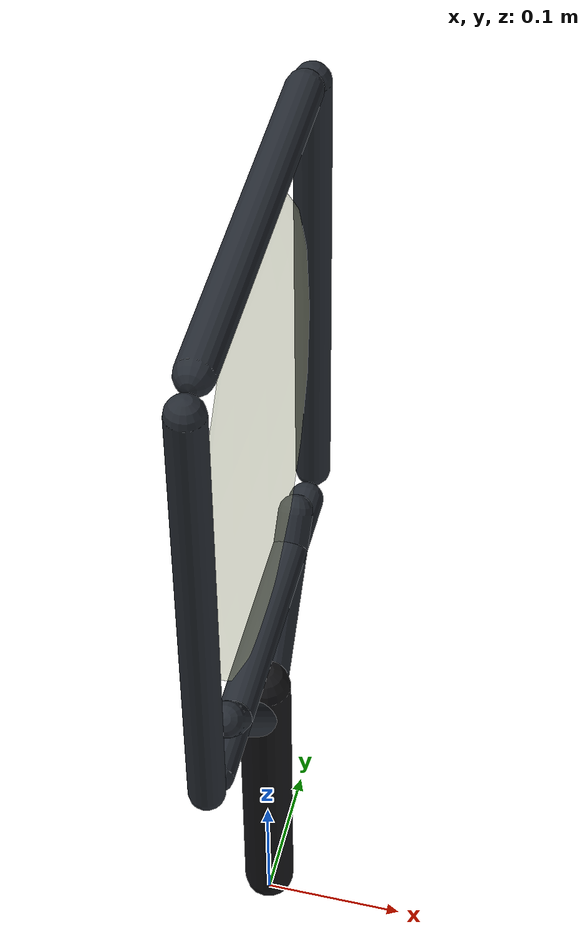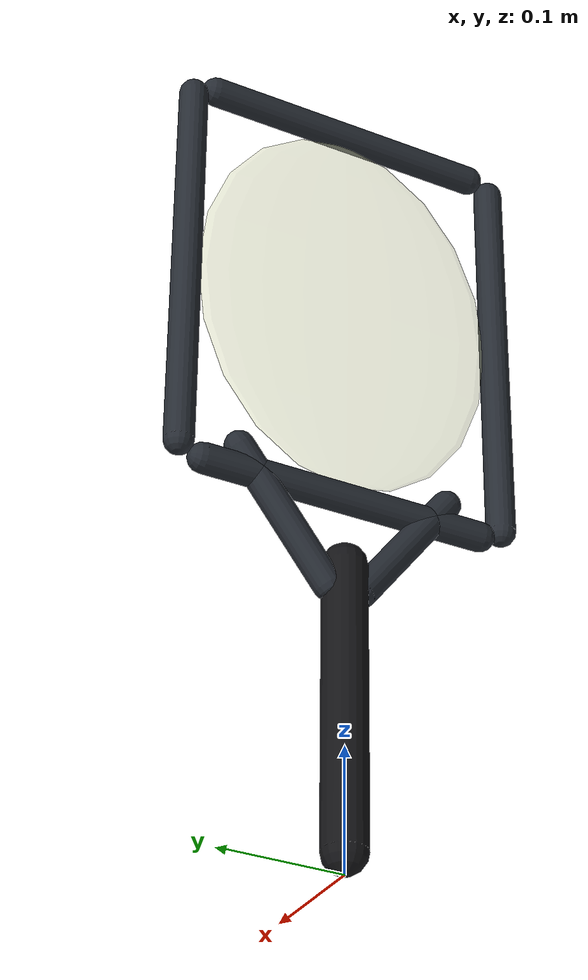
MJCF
<mujoco model="tennis_racket">
    <compiler angle="degree" coordinate="local" inertiafromgeom="false" />

    <default>
        <geom contype="8" conaffinity="7" condim="3" density="0" friction="0.45 0.01 0.001" margin="0.001" />
        <default class="racket_frame">
            <geom type="capsule" size="0.012" rgba="0.15 0.17 0.2 1" />
        </default>
    </default>

    <worldbody>
        <body name="tennis_racket">
            <inertial pos="0 0 0.36" mass="0.30" diaginertia="0.0105 0.012 0.0018" />

            <geom name="racket_grip" class="racket_frame" fromto="0 0 0.018 0 0 0.25" size="0.018" rgba="0.08 0.08 0.09 1" />
            <geom name="racket_throat_negative" class="racket_frame" fromto="0 -0.014 0.23 0 -0.09 0.33" />
            <geom name="racket_throat_positive" class="racket_frame" fromto="0 0.014 0.23 0 0.09 0.33" />
            <geom name="racket_frame_negative" class="racket_frame" fromto="0 -0.14 0.32 0 -0.14 0.66" />
            <geom name="racket_frame_positive" class="racket_frame" fromto="0 0.14 0.32 0 0.14 0.66" />
            <geom name="racket_frame_bottom" class="racket_frame" fromto="0 -0.12 0.31 0 0.12 0.31" />
            <geom name="racket_frame_top" class="racket_frame" fromto="0 -0.12 0.67 0 0.12 0.67" />

            <!-- The thin physical stringbed is deliberately explicit rather
                 than a visual-only mesh or proximity trigger. -->
            <geom name="racket_stringbed" type="ellipsoid" pos="0 0 0.49" size="0.006 0.13 0.17" priority="2" margin="0.003" friction="0.35 0.005 0.0001" solref="0.008 0.15" rgba="0.88 0.9 0.72 0.42" />
            <site name="racket_grip_mount" group="4" pos="0 0 0" size="0.01" rgba="0.2 0.8 1 0.5" />
            <site name="racket_center" group="4" pos="0 0 0.49" size="0.012" rgba="1 0.2 0.2 0.55" />
            <site name="racket_tip" group="4" pos="0 0 0.682" size="0.008" rgba="1 0.2 0.2 0.35" />
        </body>
    </worldbody>
</mujoco>
